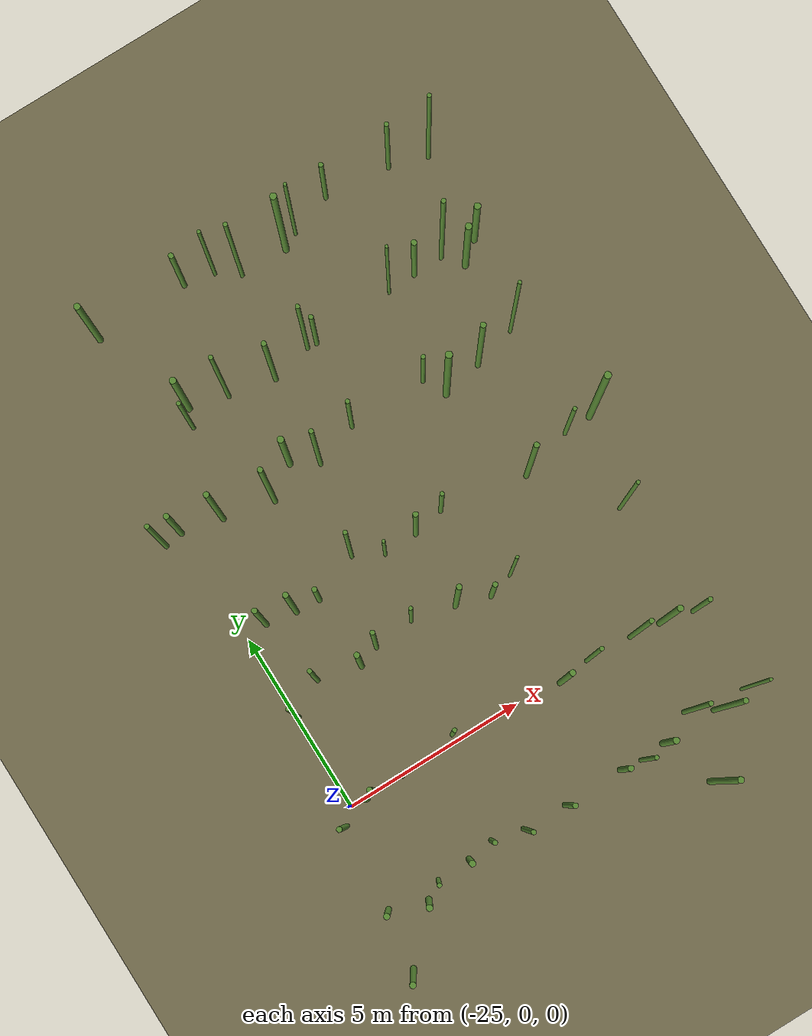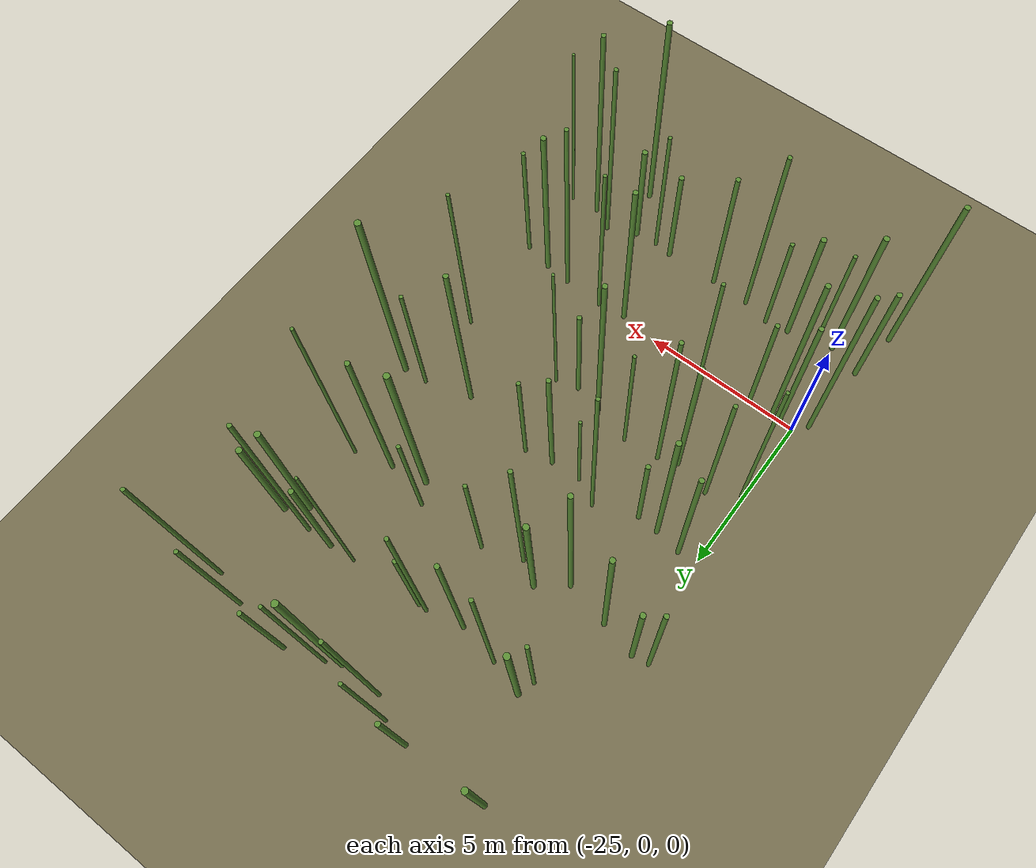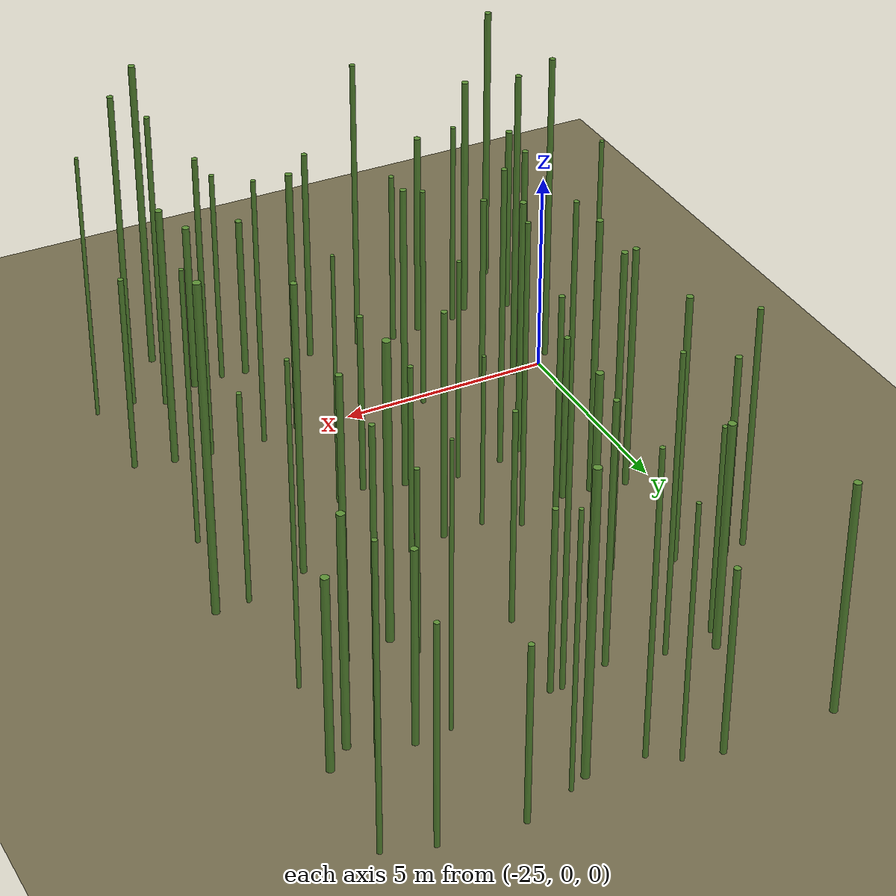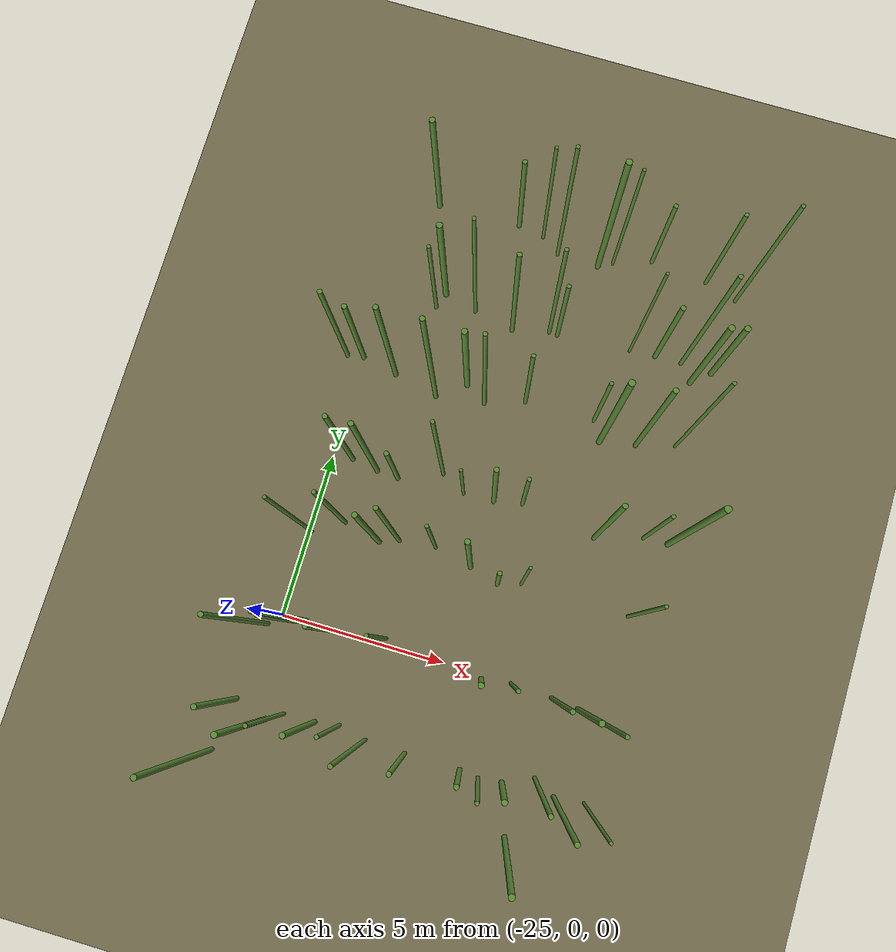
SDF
<sdf version="1.9">
 <world name="bamboo_field">
  <model name="ground_plane">
   <static>true</static>
   <link name="link">
    <collision name="collision">
     <geometry><plane><normal>0 0 1</normal><size>80.0 80.0</size></plane></geometry>
    </collision>
    <visual name="visual">
     <geometry><plane><normal>0 0 1</normal><size>80.0 80.0</size></plane></geometry>
     <material><diffuse>0.45 0.42 0.30 1</diffuse></material>
    </visual>
   </link>
  </model>
  <model name="bamboo_890">
   <static>true</static>
   <pose>-25.815961048174238 -4.336110451704584 3.5753836882809575 0 0 0</pose>
   <link name="link">
    <collision name="collision">
     <geometry>
      <cylinder><radius>0.07972393766311794</radius><length>7.150767376561915</length></cylinder>
     </geometry>
    </collision>
    <visual name="visual">
     <geometry>
      <cylinder><radius>0.07972393766311794</radius><length>7.150767376561915</length></cylinder>
     </geometry>
     <material><diffuse>0.35 0.55 0.20 1</diffuse><specular>0.1 0.1 0.1 1</specular></material>
    </visual>
   </link>
  </model>
  <model name="bamboo_896">
   <static>true</static>
   <pose>-16.85242221844045 -4.294090404373691 3.8907306446615317 0 0 0</pose>
   <link name="link">
    <collision name="collision">
     <geometry>
      <cylinder><radius>0.07999519335974248</radius><length>7.7814612893230635</length></cylinder>
     </geometry>
    </collision>
    <visual name="visual">
     <geometry>
      <cylinder><radius>0.07999519335974248</radius><length>7.7814612893230635</length></cylinder>
     </geometry>
     <material><diffuse>0.35 0.55 0.20 1</diffuse><specular>0.1 0.1 0.1 1</specular></material>
    </visual>
   </link>
  </model>
  <model name="bamboo_956">
   <static>true</static>
   <pose>-25.56715957275209 -2.7283411598563765 2.4038635089034277 0 0 0</pose>
   <link name="link">
    <collision name="collision">
     <geometry>
      <cylinder><radius>0.07963657076136091</radius><length>4.807727017806855</length></cylinder>
     </geometry>
    </collision>
    <visual name="visual">
     <geometry>
      <cylinder><radius>0.07963657076136091</radius><length>4.807727017806855</length></cylinder>
     </geometry>
     <material><diffuse>0.35 0.55 0.20 1</diffuse><specular>0.1 0.1 0.1 1</specular></material>
    </visual>
   </link>
  </model>
  <model name="bamboo_957">
   <static>true</static>
   <pose>-24.559152380116394 -3.049397445802881 3.0932400676260947 0 0 0</pose>
   <link name="link">
    <collision name="collision">
     <geometry>
      <cylinder><radius>0.08298361559976972</radius><length>6.186480135252189</length></cylinder>
     </geometry>
    </collision>
    <visual name="visual">
     <geometry>
      <cylinder><radius>0.08298361559976972</radius><length>6.186480135252189</length></cylinder>
     </geometry>
     <material><diffuse>0.35 0.55 0.20 1</diffuse><specular>0.1 0.1 0.1 1</specular></material>
    </visual>
   </link>
  </model>
  <model name="bamboo_958">
   <static>true</static>
   <pose>-24.090360570236673 -2.7497570448590603 2.6291183956395727 0 0 0</pose>
   <link name="link">
    <collision name="collision">
     <geometry>
      <cylinder><radius>0.059181493837429405</radius><length>5.2582367912791455</length></cylinder>
     </geometry>
    </collision>
    <visual name="visual">
     <geometry>
      <cylinder><radius>0.059181493837429405</radius><length>5.2582367912791455</length></cylinder>
     </geometry>
     <material><diffuse>0.35 0.55 0.20 1</diffuse><specular>0.1 0.1 0.1 1</specular></material>
    </visual>
   </link>
  </model>
  <model name="bamboo_959">
   <static>true</static>
   <pose>-23.146410803214398 -2.727480685984248 2.6060891432270443 0 0 0</pose>
   <link name="link">
    <collision name="collision">
     <geometry>
      <cylinder><radius>0.08301803513593319</radius><length>5.212178286454089</length></cylinder>
     </geometry>
    </collision>
    <visual name="visual">
     <geometry>
      <cylinder><radius>0.08301803513593319</radius><length>5.212178286454089</length></cylinder>
     </geometry>
     <material><diffuse>0.35 0.55 0.20 1</diffuse><specular>0.1 0.1 0.1 1</specular></material>
    </visual>
   </link>
  </model>
  <model name="bamboo_960">
   <static>true</static>
   <pose>-22.414339742873768 -2.609461399544144 2.2187639857658032 0 0 0</pose>
   <link name="link">
    <collision name="collision">
     <geometry>
      <cylinder><radius>0.06437274633497414</radius><length>4.4375279715316065</length></cylinder>
     </geometry>
    </collision>
    <visual name="visual">
     <geometry>
      <cylinder><radius>0.06437274633497414</radius><length>4.4375279715316065</length></cylinder>
     </geometry>
     <material><diffuse>0.35 0.55 0.20 1</diffuse><specular>0.1 0.1 0.1 1</specular></material>
    </visual>
   </link>
  </model>
  <model name="bamboo_961">
   <static>true</static>
   <pose>-21.558027747997908 -2.797547038300263 3.7087029390977464 0 0 0</pose>
   <link name="link">
    <collision name="collision">
     <geometry>
      <cylinder><radius>0.06379555276120283</radius><length>7.417405878195493</length></cylinder>
     </geometry>
    </collision>
    <visual name="visual">
     <geometry>
      <cylinder><radius>0.06379555276120283</radius><length>7.417405878195493</length></cylinder>
     </geometry>
     <material><diffuse>0.35 0.55 0.20 1</diffuse><specular>0.1 0.1 0.1 1</specular></material>
    </visual>
   </link>
  </model>
  <model name="bamboo_962">
   <static>true</static>
   <pose>-20.330382768815213 -2.8471784636018214 2.7055275405417496 0 0 0</pose>
   <link name="link">
    <collision name="collision">
     <geometry>
      <cylinder><radius>0.07084698381889155</radius><length>5.411055081083499</length></cylinder>
     </geometry>
    </collision>
    <visual name="visual">
     <geometry>
      <cylinder><radius>0.07084698381889155</radius><length>5.411055081083499</length></cylinder>
     </geometry>
     <material><diffuse>0.35 0.55 0.20 1</diffuse><specular>0.1 0.1 0.1 1</specular></material>
    </visual>
   </link>
  </model>
  <model name="bamboo_963">
   <static>true</static>
   <pose>-18.644858351196923 -2.832636844901462 2.0537996853171885 0 0 0</pose>
   <link name="link">
    <collision name="collision">
     <geometry>
      <cylinder><radius>0.07710285670458039</radius><length>4.107599370634377</length></cylinder>
     </geometry>
    </collision>
    <visual name="visual">
     <geometry>
      <cylinder><radius>0.07710285670458039</radius><length>4.107599370634377</length></cylinder>
     </geometry>
     <material><diffuse>0.35 0.55 0.20 1</diffuse><specular>0.1 0.1 0.1 1</specular></material>
    </visual>
   </link>
  </model>
  <model name="bamboo_964">
   <static>true</static>
   <pose>-18.06699035074461 -2.8981866603637374 2.7025385209388917 0 0 0</pose>
   <link name="link">
    <collision name="collision">
     <geometry>
      <cylinder><radius>0.05786830403355121</radius><length>5.405077041877783</length></cylinder>
     </geometry>
    </collision>
    <visual name="visual">
     <geometry>
      <cylinder><radius>0.05786830403355121</radius><length>5.405077041877783</length></cylinder>
     </geometry>
     <material><diffuse>0.35 0.55 0.20 1</diffuse><specular>0.1 0.1 0.1 1</specular></material>
    </visual>
   </link>
  </model>
  <model name="bamboo_965">
   <static>true</static>
   <pose>-17.357186505502874 -2.835200432086874 2.1310004721423974 0 0 0</pose>
   <link name="link">
    <collision name="collision">
     <geometry>
      <cylinder><radius>0.08551945093571814</radius><length>4.262000944284795</length></cylinder>
     </geometry>
    </collision>
    <visual name="visual">
     <geometry>
      <cylinder><radius>0.08551945093571814</radius><length>4.262000944284795</length></cylinder>
     </geometry>
     <material><diffuse>0.35 0.55 0.20 1</diffuse><specular>0.1 0.1 0.1 1</specular></material>
    </visual>
   </link>
  </model>
  <model name="bamboo_966">
   <static>true</static>
   <pose>-16.465105845371536 -2.440529520387524 3.726737043596402 0 0 0</pose>
   <link name="link">
    <collision name="collision">
     <geometry>
      <cylinder><radius>0.06304546932047894</radius><length>7.453474087192804</length></cylinder>
     </geometry>
    </collision>
    <visual name="visual">
     <geometry>
      <cylinder><radius>0.06304546932047894</radius><length>7.453474087192804</length></cylinder>
     </geometry>
     <material><diffuse>0.35 0.55 0.20 1</diffuse><specular>0.1 0.1 0.1 1</specular></material>
    </visual>
   </link>
  </model>
  <model name="bamboo_967">
   <static>true</static>
   <pose>-15.791676559285897 -2.7983058587645666 3.971529563017403 0 0 0</pose>
   <link name="link">
    <collision name="collision">
     <geometry>
      <cylinder><radius>0.06939946167999372</radius><length>7.943059126034806</length></cylinder>
     </geometry>
    </collision>
    <visual name="visual">
     <geometry>
      <cylinder><radius>0.06939946167999372</radius><length>7.943059126034806</length></cylinder>
     </geometry>
     <material><diffuse>0.35 0.55 0.20 1</diffuse><specular>0.1 0.1 0.1 1</specular></material>
    </visual>
   </link>
  </model>
  <model name="bamboo_968">
   <static>true</static>
   <pose>-14.891900193025585 -2.7195784462254045 3.350222590653722 0 0 0</pose>
   <link name="link">
    <collision name="collision">
     <geometry>
      <cylinder><radius>0.045002834160202725</radius><length>6.700445181307444</length></cylinder>
     </geometry>
    </collision>
    <visual name="visual">
     <geometry>
      <cylinder><radius>0.045002834160202725</radius><length>6.700445181307444</length></cylinder>
     </geometry>
     <material><diffuse>0.35 0.55 0.20 1</diffuse><specular>0.1 0.1 0.1 1</specular></material>
    </visual>
   </link>
  </model>
  <model name="bamboo_1023">
   <static>true</static>
   <pose>-25.360858038581476 -0.3646695667182474 3.902439700157492 0 0 0</pose>
   <link name="link">
    <collision name="collision">
     <geometry>
      <cylinder><radius>0.06951692489130364</radius><length>7.804879400314984</length></cylinder>
     </geometry>
    </collision>
    <visual name="visual">
     <geometry>
      <cylinder><radius>0.06951692489130364</radius><length>7.804879400314984</length></cylinder>
     </geometry>
     <material><diffuse>0.35 0.55 0.20 1</diffuse><specular>0.1 0.1 0.1 1</specular></material>
    </visual>
   </link>
  </model>
  <model name="bamboo_1024">
   <static>true</static>
   <pose>-24.545675718209168 -0.05636941325124595 2.9081110302859057 0 0 0</pose>
   <link name="link">
    <collision name="collision">
     <geometry>
      <cylinder><radius>0.0729769661575016</radius><length>5.816222060571811</length></cylinder>
     </geometry>
    </collision>
    <visual name="visual">
     <geometry>
      <cylinder><radius>0.0729769661575016</radius><length>5.816222060571811</length></cylinder>
     </geometry>
     <material><diffuse>0.35 0.55 0.20 1</diffuse><specular>0.1 0.1 0.1 1</specular></material>
    </visual>
   </link>
  </model>
  <model name="bamboo_1025">
   <static>true</static>
   <pose>-24.28455381778152 0.03976925733681791 3.9017919369504153 0 0 0</pose>
   <link name="link">
    <collision name="collision">
     <geometry>
      <cylinder><radius>0.07280863785086752</radius><length>7.8035838739008305</length></cylinder>
     </geometry>
    </collision>
    <visual name="visual">
     <geometry>
      <cylinder><radius>0.07280863785086752</radius><length>7.8035838739008305</length></cylinder>
     </geometry>
     <material><diffuse>0.35 0.55 0.20 1</diffuse><specular>0.1 0.1 0.1 1</specular></material>
    </visual>
   </link>
  </model>
  <model name="bamboo_1026">
   <static>true</static>
   <pose>-23.484189247755058 -0.021761574132829364 2.422733722079975 0 0 0</pose>
   <link name="link">
    <collision name="collision">
     <geometry>
      <cylinder><radius>0.06845792179156847</radius><length>4.84546744415995</length></cylinder>
     </geometry>
    </collision>
    <visual name="visual">
     <geometry>
      <cylinder><radius>0.06845792179156847</radius><length>4.84546744415995</length></cylinder>
     </geometry>
     <material><diffuse>0.35 0.55 0.20 1</diffuse><specular>0.1 0.1 0.1 1</specular></material>
    </visual>
   </link>
  </model>
  <model name="bamboo_1027">
   <static>true</static>
   <pose>-21.83610128693749 0.2032221220711954 2.797716993915497 0 0 0</pose>
   <link name="link">
    <collision name="collision">
     <geometry>
      <cylinder><radius>0.05906954649558328</radius><length>5.595433987830994</length></cylinder>
     </geometry>
    </collision>
    <visual name="visual">
     <geometry>
      <cylinder><radius>0.05906954649558328</radius><length>5.595433987830994</length></cylinder>
     </geometry>
     <material><diffuse>0.35 0.55 0.20 1</diffuse><specular>0.1 0.1 0.1 1</specular></material>
    </visual>
   </link>
  </model>
  <model name="bamboo_1028">
   <static>true</static>
   <pose>-18.77734590296362 -0.12872082647017719 3.3081285976489583 0 0 0</pose>
   <link name="link">
    <collision name="collision">
     <geometry>
      <cylinder><radius>0.07762792831451909</radius><length>6.616257195297917</length></cylinder>
     </geometry>
    </collision>
    <visual name="visual">
     <geometry>
      <cylinder><radius>0.07762792831451909</radius><length>6.616257195297917</length></cylinder>
     </geometry>
     <material><diffuse>0.35 0.55 0.20 1</diffuse><specular>0.1 0.1 0.1 1</specular></material>
    </visual>
   </link>
  </model>
  <model name="bamboo_1029">
   <static>true</static>
   <pose>-17.89692325613783 -0.006448187445116715 3.3699238837288856 0 0 0</pose>
   <link name="link">
    <collision name="collision">
     <geometry>
      <cylinder><radius>0.055505065360566326</radius><length>6.739847767457771</length></cylinder>
     </geometry>
    </collision>
    <visual name="visual">
     <geometry>
      <cylinder><radius>0.055505065360566326</radius><length>6.739847767457771</length></cylinder>
     </geometry>
     <material><diffuse>0.35 0.55 0.20 1</diffuse><specular>0.1 0.1 0.1 1</specular></material>
    </visual>
   </link>
  </model>
  <model name="bamboo_1030">
   <static>true</static>
   <pose>-16.622494993698552 -0.07817244094342901 3.770826077283763 0 0 0</pose>
   <link name="link">
    <collision name="collision">
     <geometry>
      <cylinder><radius>0.06448115179145425</radius><length>7.541652154567526</length></cylinder>
     </geometry>
    </collision>
    <visual name="visual">
     <geometry>
      <cylinder><radius>0.06448115179145425</radius><length>7.541652154567526</length></cylinder>
     </geometry>
     <material><diffuse>0.35 0.55 0.20 1</diffuse><specular>0.1 0.1 0.1 1</specular></material>
    </visual>
   </link>
  </model>
  <model name="bamboo_1031">
   <static>true</static>
   <pose>-15.782900396406355 -0.17410042562199024 3.2277355668895815 0 0 0</pose>
   <link name="link">
    <collision name="collision">
     <geometry>
      <cylinder><radius>0.08054971798071117</radius><length>6.455471133779163</length></cylinder>
     </geometry>
    </collision>
    <visual name="visual">
     <geometry>
      <cylinder><radius>0.08054971798071117</radius><length>6.455471133779163</length></cylinder>
     </geometry>
     <material><diffuse>0.35 0.55 0.20 1</diffuse><specular>0.1 0.1 0.1 1</specular></material>
    </visual>
   </link>
  </model>
  <model name="bamboo_1032">
   <static>true</static>
   <pose>-14.8902337312144 -0.3637636041969985 2.448460424655834 0 0 0</pose>
   <link name="link">
    <collision name="collision">
     <geometry>
      <cylinder><radius>0.06317624378071726</radius><length>4.896920849311668</length></cylinder>
     </geometry>
    </collision>
    <visual name="visual">
     <geometry>
      <cylinder><radius>0.06317624378071726</radius><length>4.896920849311668</length></cylinder>
     </geometry>
     <material><diffuse>0.35 0.55 0.20 1</diffuse><specular>0.1 0.1 0.1 1</specular></material>
    </visual>
   </link>
  </model>
  <model name="bamboo_1087">
   <static>true</static>
   <pose>-24.929234527138036 2.6518426527826735 3.6382501384565282 0 0 0</pose>
   <link name="link">
    <collision name="collision">
     <geometry>
      <cylinder><radius>0.050779072785033706</radius><length>7.2765002769130565</length></cylinder>
     </geometry>
    </collision>
    <visual name="visual">
     <geometry>
      <cylinder><radius>0.050779072785033706</radius><length>7.2765002769130565</length></cylinder>
     </geometry>
     <material><diffuse>0.35 0.55 0.20 1</diffuse><specular>0.1 0.1 0.1 1</specular></material>
    </visual>
   </link>
  </model>
  <model name="bamboo_1088">
   <static>true</static>
   <pose>-24.035895725856673 3.1964142205058295 3.1461181835785785 0 0 0</pose>
   <link name="link">
    <collision name="collision">
     <geometry>
      <cylinder><radius>0.060878757715663465</radius><length>6.292236367157157</length></cylinder>
     </geometry>
    </collision>
    <visual name="visual">
     <geometry>
      <cylinder><radius>0.060878757715663465</radius><length>6.292236367157157</length></cylinder>
     </geometry>
     <material><diffuse>0.35 0.55 0.20 1</diffuse><specular>0.1 0.1 0.1 1</specular></material>
    </visual>
   </link>
  </model>
  <model name="bamboo_1089">
   <static>true</static>
   <pose>-22.886024907515704 2.9195478218214914 3.211419420433187 0 0 0</pose>
   <link name="link">
    <collision name="collision">
     <geometry>
      <cylinder><radius>0.07600167476895581</radius><length>6.422838840866374</length></cylinder>
     </geometry>
    </collision>
    <visual name="visual">
     <geometry>
      <cylinder><radius>0.07600167476895581</radius><length>6.422838840866374</length></cylinder>
     </geometry>
     <material><diffuse>0.35 0.55 0.20 1</diffuse><specular>0.1 0.1 0.1 1</specular></material>
    </visual>
   </link>
  </model>
  <model name="bamboo_1090">
   <static>true</static>
   <pose>-22.30736490315155 3.12608125376736 3.73269110512531 0 0 0</pose>
   <link name="link">
    <collision name="collision">
     <geometry>
      <cylinder><radius>0.06245373694188244</radius><length>7.46538221025062</length></cylinder>
     </geometry>
    </collision>
    <visual name="visual">
     <geometry>
      <cylinder><radius>0.06245373694188244</radius><length>7.46538221025062</length></cylinder>
     </geometry>
     <material><diffuse>0.35 0.55 0.20 1</diffuse><specular>0.1 0.1 0.1 1</specular></material>
    </visual>
   </link>
  </model>
  <model name="bamboo_1091">
   <static>true</static>
   <pose>-21.19051926321501 3.2368687633873363 2.790794258400766 0 0 0</pose>
   <link name="link">
    <collision name="collision">
     <geometry>
      <cylinder><radius>0.05164111416796014</radius><length>5.581588516801532</length></cylinder>
     </geometry>
    </collision>
    <visual name="visual">
     <geometry>
      <cylinder><radius>0.05164111416796014</radius><length>5.581588516801532</length></cylinder>
     </geometry>
     <material><diffuse>0.35 0.55 0.20 1</diffuse><specular>0.1 0.1 0.1 1</specular></material>
    </visual>
   </link>
  </model>
  <model name="bamboo_1092">
   <static>true</static>
   <pose>-20.018152074414676 2.96660947447854 3.7319071466567335 0 0 0</pose>
   <link name="link">
    <collision name="collision">
     <geometry>
      <cylinder><radius>0.07229582648297023</radius><length>7.463814293313467</length></cylinder>
     </geometry>
    </collision>
    <visual name="visual">
     <geometry>
      <cylinder><radius>0.07229582648297023</radius><length>7.463814293313467</length></cylinder>
     </geometry>
     <material><diffuse>0.35 0.55 0.20 1</diffuse><specular>0.1 0.1 0.1 1</specular></material>
    </visual>
   </link>
  </model>
  <model name="bamboo_1093">
   <static>true</static>
   <pose>-19.10318762388485 2.7009118322679777 2.247563222705039 0 0 0</pose>
   <link name="link">
    <collision name="collision">
     <geometry>
      <cylinder><radius>0.06805221775366353</radius><length>4.495126445410078</length></cylinder>
     </geometry>
    </collision>
    <visual name="visual">
     <geometry>
      <cylinder><radius>0.06805221775366353</radius><length>4.495126445410078</length></cylinder>
     </geometry>
     <material><diffuse>0.35 0.55 0.20 1</diffuse><specular>0.1 0.1 0.1 1</specular></material>
    </visual>
   </link>
  </model>
  <model name="bamboo_1094">
   <static>true</static>
   <pose>-18.414675867207535 2.899298103440958 3.140488766457942 0 0 0</pose>
   <link name="link">
    <collision name="collision">
     <geometry>
      <cylinder><radius>0.042643719299619194</radius><length>6.280977532915884</length></cylinder>
     </geometry>
    </collision>
    <visual name="visual">
     <geometry>
      <cylinder><radius>0.042643719299619194</radius><length>6.280977532915884</length></cylinder>
     </geometry>
     <material><diffuse>0.35 0.55 0.20 1</diffuse><specular>0.1 0.1 0.1 1</specular></material>
    </visual>
   </link>
  </model>
  <model name="bamboo_1095">
   <static>true</static>
   <pose>-15.08508602859478 2.877173747464722 3.4112354045945024 0 0 0</pose>
   <link name="link">
    <collision name="collision">
     <geometry>
      <cylinder><radius>0.05226433471951281</radius><length>6.822470809189005</length></cylinder>
     </geometry>
    </collision>
    <visual name="visual">
     <geometry>
      <cylinder><radius>0.05226433471951281</radius><length>6.822470809189005</length></cylinder>
     </geometry>
     <material><diffuse>0.35 0.55 0.20 1</diffuse><specular>0.1 0.1 0.1 1</specular></material>
    </visual>
   </link>
  </model>
  <model name="bamboo_1155">
   <static>true</static>
   <pose>-24.4029375286513 5.12446588388178 3.0183170344571186 0 0 0</pose>
   <link name="link">
    <collision name="collision">
     <geometry>
      <cylinder><radius>0.07225357821253547</radius><length>6.036634068914237</length></cylinder>
     </geometry>
    </collision>
    <visual name="visual">
     <geometry>
      <cylinder><radius>0.07225357821253547</radius><length>6.036634068914237</length></cylinder>
     </geometry>
     <material><diffuse>0.35 0.55 0.20 1</diffuse><specular>0.1 0.1 0.1 1</specular></material>
    </visual>
   </link>
  </model>
  <model name="bamboo_1156">
   <static>true</static>
   <pose>-23.576865301043625 4.987313610536278 3.4312997453771814 0 0 0</pose>
   <link name="link">
    <collision name="collision">
     <geometry>
      <cylinder><radius>0.07472548368696014</radius><length>6.862599490754363</length></cylinder>
     </geometry>
    </collision>
    <visual name="visual">
     <geometry>
      <cylinder><radius>0.07472548368696014</radius><length>6.862599490754363</length></cylinder>
     </geometry>
     <material><diffuse>0.35 0.55 0.20 1</diffuse><specular>0.1 0.1 0.1 1</specular></material>
    </visual>
   </link>
  </model>
  <model name="bamboo_1157">
   <static>true</static>
   <pose>-22.909172892705207 4.94157913729013 2.073208975899213 0 0 0</pose>
   <link name="link">
    <collision name="collision">
     <geometry>
      <cylinder><radius>0.06919913107519494</radius><length>4.146417951798426</length></cylinder>
     </geometry>
    </collision>
    <visual name="visual">
     <geometry>
      <cylinder><radius>0.06919913107519494</radius><length>4.146417951798426</length></cylinder>
     </geometry>
     <material><diffuse>0.35 0.55 0.20 1</diffuse><specular>0.1 0.1 0.1 1</specular></material>
    </visual>
   </link>
  </model>
  <model name="bamboo_1158">
   <static>true</static>
   <pose>-21.617614714359487 5.454328024480697 3.7774178590935907 0 0 0</pose>
   <link name="link">
    <collision name="collision">
     <geometry>
      <cylinder><radius>0.0552999518159862</radius><length>7.5548357181871815</length></cylinder>
     </geometry>
    </collision>
    <visual name="visual">
     <geometry>
      <cylinder><radius>0.0552999518159862</radius><length>7.5548357181871815</length></cylinder>
     </geometry>
     <material><diffuse>0.35 0.55 0.20 1</diffuse><specular>0.1 0.1 0.1 1</specular></material>
    </visual>
   </link>
  </model>
  <model name="bamboo_1159">
   <static>true</static>
   <pose>-20.85677732218623 5.045581255733592 2.1680562987185716 0 0 0</pose>
   <link name="link">
    <collision name="collision">
     <geometry>
      <cylinder><radius>0.04671651577637447</radius><length>4.336112597437143</length></cylinder>
     </geometry>
    </collision>
    <visual name="visual">
     <geometry>
      <cylinder><radius>0.04671651577637447</radius><length>4.336112597437143</length></cylinder>
     </geometry>
     <material><diffuse>0.35 0.55 0.20 1</diffuse><specular>0.1 0.1 0.1 1</specular></material>
    </visual>
   </link>
  </model>
  <model name="bamboo_1160">
   <static>true</static>
   <pose>-19.90706046096774 5.08574573233786 2.8522046871654867 0 0 0</pose>
   <link name="link">
    <collision name="collision">
     <geometry>
      <cylinder><radius>0.07105629099025353</radius><length>5.704409374330973</length></cylinder>
     </geometry>
    </collision>
    <visual name="visual">
     <geometry>
      <cylinder><radius>0.07105629099025353</radius><length>5.704409374330973</length></cylinder>
     </geometry>
     <material><diffuse>0.35 0.55 0.20 1</diffuse><specular>0.1 0.1 0.1 1</specular></material>
    </visual>
   </link>
  </model>
  <model name="bamboo_1161">
   <static>true</static>
   <pose>-19.048891087230462 5.251227186441029 2.359131462003119 0 0 0</pose>
   <link name="link">
    <collision name="collision">
     <geometry>
      <cylinder><radius>0.05911854633119635</radius><length>4.718262924006238</length></cylinder>
     </geometry>
    </collision>
    <visual name="visual">
     <geometry>
      <cylinder><radius>0.05911854633119635</radius><length>4.718262924006238</length></cylinder>
     </geometry>
     <material><diffuse>0.35 0.55 0.20 1</diffuse><specular>0.1 0.1 0.1 1</specular></material>
    </visual>
   </link>
  </model>
  <model name="bamboo_1162">
   <static>true</static>
   <pose>-16.68324169377047 4.868365166379786 3.5717465918723486 0 0 0</pose>
   <link name="link">
    <collision name="collision">
     <geometry>
      <cylinder><radius>0.07218271996012293</radius><length>7.143493183744697</length></cylinder>
     </geometry>
    </collision>
    <visual name="visual">
     <geometry>
      <cylinder><radius>0.07218271996012293</radius><length>7.143493183744697</length></cylinder>
     </geometry>
     <material><diffuse>0.35 0.55 0.20 1</diffuse><specular>0.1 0.1 0.1 1</specular></material>
    </visual>
   </link>
  </model>
  <model name="bamboo_1163">
   <static>true</static>
   <pose>-15.252308381770757 5.2779563204544715 2.605431165474822 0 0 0</pose>
   <link name="link">
    <collision name="collision">
     <geometry>
      <cylinder><radius>0.056462064627566796</radius><length>5.210862330949644</length></cylinder>
     </geometry>
    </collision>
    <visual name="visual">
     <geometry>
      <cylinder><radius>0.056462064627566796</radius><length>5.210862330949644</length></cylinder>
     </geometry>
     <material><diffuse>0.35 0.55 0.20 1</diffuse><specular>0.1 0.1 0.1 1</specular></material>
    </visual>
   </link>
  </model>
  <model name="bamboo_1164">
   <static>true</static>
   <pose>-14.486749555297038 5.317353493742744 3.9968101956695197 0 0 0</pose>
   <link name="link">
    <collision name="collision">
     <geometry>
      <cylinder><radius>0.08989978527198177</radius><length>7.993620391339039</length></cylinder>
     </geometry>
    </collision>
    <visual name="visual">
     <geometry>
      <cylinder><radius>0.08989978527198177</radius><length>7.993620391339039</length></cylinder>
     </geometry>
     <material><diffuse>0.35 0.55 0.20 1</diffuse><specular>0.1 0.1 0.1 1</specular></material>
    </visual>
   </link>
  </model>
  <model name="bamboo_1223">
   <static>true</static>
   <pose>-25.53479763833899 8.20137957479833 2.9772436862435896 0 0 0</pose>
   <link name="link">
    <collision name="collision">
     <geometry>
      <cylinder><radius>0.06548041817140894</radius><length>5.954487372487179</length></cylinder>
     </geometry>
    </collision>
    <visual name="visual">
     <geometry>
      <cylinder><radius>0.06548041817140894</radius><length>5.954487372487179</length></cylinder>
     </geometry>
     <material><diffuse>0.35 0.55 0.20 1</diffuse><specular>0.1 0.1 0.1 1</specular></material>
    </visual>
   </link>
  </model>
  <model name="bamboo_1224">
   <static>true</static>
   <pose>-25.03222238060974 8.283049273547787 2.484705738391363 0 0 0</pose>
   <link name="link">
    <collision name="collision">
     <geometry>
      <cylinder><radius>0.07678321028008753</radius><length>4.969411476782726</length></cylinder>
     </geometry>
    </collision>
    <visual name="visual">
     <geometry>
      <cylinder><radius>0.07678321028008753</radius><length>4.969411476782726</length></cylinder>
     </geometry>
     <material><diffuse>0.35 0.55 0.20 1</diffuse><specular>0.1 0.1 0.1 1</specular></material>
    </visual>
   </link>
  </model>
  <model name="bamboo_1225">
   <static>true</static>
   <pose>-23.92106510665111 8.032690325495825 3.290667074142162 0 0 0</pose>
   <link name="link">
    <collision name="collision">
     <geometry>
      <cylinder><radius>0.07487357112231688</radius><length>6.581334148284324</length></cylinder>
     </geometry>
    </collision>
    <visual name="visual">
     <geometry>
      <cylinder><radius>0.07487357112231688</radius><length>6.581334148284324</length></cylinder>
     </geometry>
     <material><diffuse>0.35 0.55 0.20 1</diffuse><specular>0.1 0.1 0.1 1</specular></material>
    </visual>
   </link>
  </model>
  <model name="bamboo_1226">
   <static>true</static>
   <pose>-22.542508871902886 7.722496957602768 3.90355649087734 0 0 0</pose>
   <link name="link">
    <collision name="collision">
     <geometry>
      <cylinder><radius>0.07010746634689785</radius><length>7.80711298175468</length></cylinder>
     </geometry>
    </collision>
    <visual name="visual">
     <geometry>
      <cylinder><radius>0.07010746634689785</radius><length>7.80711298175468</length></cylinder>
     </geometry>
     <material><diffuse>0.35 0.55 0.20 1</diffuse><specular>0.1 0.1 0.1 1</specular></material>
    </visual>
   </link>
  </model>
  <model name="bamboo_1227">
   <static>true</static>
   <pose>-21.712868827587542 8.344557741365495 2.7953338430236245 0 0 0</pose>
   <link name="link">
    <collision name="collision">
     <geometry>
      <cylinder><radius>0.0858441426546677</radius><length>5.590667686047249</length></cylinder>
     </geometry>
    </collision>
    <visual name="visual">
     <geometry>
      <cylinder><radius>0.0858441426546677</radius><length>5.590667686047249</length></cylinder>
     </geometry>
     <material><diffuse>0.35 0.55 0.20 1</diffuse><specular>0.1 0.1 0.1 1</specular></material>
    </visual>
   </link>
  </model>
  <model name="bamboo_1228">
   <static>true</static>
   <pose>-21.038756445306987 7.925414482542107 3.6594991300533932 0 0 0</pose>
   <link name="link">
    <collision name="collision">
     <geometry>
      <cylinder><radius>0.06114724299528583</radius><length>7.3189982601067864</length></cylinder>
     </geometry>
    </collision>
    <visual name="visual">
     <geometry>
      <cylinder><radius>0.06114724299528583</radius><length>7.3189982601067864</length></cylinder>
     </geometry>
     <material><diffuse>0.35 0.55 0.20 1</diffuse><specular>0.1 0.1 0.1 1</specular></material>
    </visual>
   </link>
  </model>
  <model name="bamboo_1229">
   <static>true</static>
   <pose>-19.840566643169087 8.327341115487135 2.6159577330042936 0 0 0</pose>
   <link name="link">
    <collision name="collision">
     <geometry>
      <cylinder><radius>0.05913943051773301</radius><length>5.231915466008587</length></cylinder>
     </geometry>
    </collision>
    <visual name="visual">
     <geometry>
      <cylinder><radius>0.05913943051773301</radius><length>5.231915466008587</length></cylinder>
     </geometry>
     <material><diffuse>0.35 0.55 0.20 1</diffuse><specular>0.1 0.1 0.1 1</specular></material>
    </visual>
   </link>
  </model>
  <model name="bamboo_1230">
   <static>true</static>
   <pose>-17.659048955753338 8.364872592527028 2.285426963404139 0 0 0</pose>
   <link name="link">
    <collision name="collision">
     <geometry>
      <cylinder><radius>0.05721964061790258</radius><length>4.570853926808278</length></cylinder>
     </geometry>
    </collision>
    <visual name="visual">
     <geometry>
      <cylinder><radius>0.05721964061790258</radius><length>4.570853926808278</length></cylinder>
     </geometry>
     <material><diffuse>0.35 0.55 0.20 1</diffuse><specular>0.1 0.1 0.1 1</specular></material>
    </visual>
   </link>
  </model>
  <model name="bamboo_1231">
   <static>true</static>
   <pose>-17.32286691428155 7.762749832840749 3.632778756197143 0 0 0</pose>
   <link name="link">
    <collision name="collision">
     <geometry>
      <cylinder><radius>0.08935127465739796</radius><length>7.265557512394286</length></cylinder>
     </geometry>
    </collision>
    <visual name="visual">
     <geometry>
      <cylinder><radius>0.08935127465739796</radius><length>7.265557512394286</length></cylinder>
     </geometry>
     <material><diffuse>0.35 0.55 0.20 1</diffuse><specular>0.1 0.1 0.1 1</specular></material>
    </visual>
   </link>
  </model>
  <model name="bamboo_1232">
   <static>true</static>
   <pose>-16.226001256394635 7.976116758474145 3.4660844718061323 0 0 0</pose>
   <link name="link">
    <collision name="collision">
     <geometry>
      <cylinder><radius>0.0727260595889167</radius><length>6.932168943612265</length></cylinder>
     </geometry>
    </collision>
    <visual name="visual">
     <geometry>
      <cylinder><radius>0.0727260595889167</radius><length>6.932168943612265</length></cylinder>
     </geometry>
     <material><diffuse>0.35 0.55 0.20 1</diffuse><specular>0.1 0.1 0.1 1</specular></material>
    </visual>
   </link>
  </model>
  <model name="bamboo_1233">
   <static>true</static>
   <pose>-15.048363808030016 8.283920104827327 3.8969666229223945 0 0 0</pose>
   <link name="link">
    <collision name="collision">
     <geometry>
      <cylinder><radius>0.04909921657391404</radius><length>7.793933245844789</length></cylinder>
     </geometry>
    </collision>
    <visual name="visual">
     <geometry>
      <cylinder><radius>0.04909921657391404</radius><length>7.793933245844789</length></cylinder>
     </geometry>
     <material><diffuse>0.35 0.55 0.20 1</diffuse><specular>0.1 0.1 0.1 1</specular></material>
    </visual>
   </link>
  </model>
  <model name="bamboo_1290">
   <static>true</static>
   <pose>-23.34257188570526 10.456160590306556 2.5465060047258383 0 0 0</pose>
   <link name="link">
    <collision name="collision">
     <geometry>
      <cylinder><radius>0.05667586743014713</radius><length>5.093012009451677</length></cylinder>
     </geometry>
    </collision>
    <visual name="visual">
     <geometry>
      <cylinder><radius>0.05667586743014713</radius><length>5.093012009451677</length></cylinder>
     </geometry>
     <material><diffuse>0.35 0.55 0.20 1</diffuse><specular>0.1 0.1 0.1 1</specular></material>
    </visual>
   </link>
  </model>
  <model name="bamboo_1291">
   <static>true</static>
   <pose>-23.17332340141842 10.946069864399615 2.7572647027937003 0 0 0</pose>
   <link name="link">
    <collision name="collision">
     <geometry>
      <cylinder><radius>0.08843867429428755</radius><length>5.514529405587401</length></cylinder>
     </geometry>
    </collision>
    <visual name="visual">
     <geometry>
      <cylinder><radius>0.08843867429428755</radius><length>5.514529405587401</length></cylinder>
     </geometry>
     <material><diffuse>0.35 0.55 0.20 1</diffuse><specular>0.1 0.1 0.1 1</specular></material>
    </visual>
   </link>
  </model>
  <model name="bamboo_1292">
   <static>true</static>
   <pose>-22.13379974304182 10.668396845361308 3.642686498266431 0 0 0</pose>
   <link name="link">
    <collision name="collision">
     <geometry>
      <cylinder><radius>0.05532747767449433</radius><length>7.285372996532862</length></cylinder>
     </geometry>
    </collision>
    <visual name="visual">
     <geometry>
      <cylinder><radius>0.05532747767449433</radius><length>7.285372996532862</length></cylinder>
     </geometry>
     <material><diffuse>0.35 0.55 0.20 1</diffuse><specular>0.1 0.1 0.1 1</specular></material>
    </visual>
   </link>
  </model>
  <model name="bamboo_1293">
   <static>true</static>
   <pose>-20.868751378525033 10.417647953816722 3.214933888600262 0 0 0</pose>
   <link name="link">
    <collision name="collision">
     <geometry>
      <cylinder><radius>0.06757711159849686</radius><length>6.429867777200524</length></cylinder>
     </geometry>
    </collision>
    <visual name="visual">
     <geometry>
      <cylinder><radius>0.06757711159849686</radius><length>6.429867777200524</length></cylinder>
     </geometry>
     <material><diffuse>0.35 0.55 0.20 1</diffuse><specular>0.1 0.1 0.1 1</specular></material>
    </visual>
   </link>
  </model>
  <model name="bamboo_1294">
   <static>true</static>
   <pose>-19.740146227949857 10.670302258645759 3.4825942766340354 0 0 0</pose>
   <link name="link">
    <collision name="collision">
     <geometry>
      <cylinder><radius>0.057258644404293964</radius><length>6.965188553268071</length></cylinder>
     </geometry>
    </collision>
    <visual name="visual">
     <geometry>
      <cylinder><radius>0.057258644404293964</radius><length>6.965188553268071</length></cylinder>
     </geometry>
     <material><diffuse>0.35 0.55 0.20 1</diffuse><specular>0.1 0.1 0.1 1</specular></material>
    </visual>
   </link>
  </model>
  <model name="bamboo_1295">
   <static>true</static>
   <pose>-19.473251407011258 10.657620555473773 2.2551444062450683 0 0 0</pose>
   <link name="link">
    <collision name="collision">
     <geometry>
      <cylinder><radius>0.06384309343707192</radius><length>4.510288812490137</length></cylinder>
     </geometry>
    </collision>
    <visual name="visual">
     <geometry>
      <cylinder><radius>0.06384309343707192</radius><length>4.510288812490137</length></cylinder>
     </geometry>
     <material><diffuse>0.35 0.55 0.20 1</diffuse><specular>0.1 0.1 0.1 1</specular></material>
    </visual>
   </link>
  </model>
  <model name="bamboo_1296">
   <static>true</static>
   <pose>-17.184032963613866 10.793376453122509 3.4508385455488186 0 0 0</pose>
   <link name="link">
    <collision name="collision">
     <geometry>
      <cylinder><radius>0.042643231272116916</radius><length>6.901677091097637</length></cylinder>
     </geometry>
    </collision>
    <visual name="visual">
     <geometry>
      <cylinder><radius>0.042643231272116916</radius><length>6.901677091097637</length></cylinder>
     </geometry>
     <material><diffuse>0.35 0.55 0.20 1</diffuse><specular>0.1 0.1 0.1 1</specular></material>
    </visual>
   </link>
  </model>
  <model name="bamboo_1297">
   <static>true</static>
   <pose>-16.376165812413234 10.857052991320177 2.3662090515935423 0 0 0</pose>
   <link name="link">
    <collision name="collision">
     <geometry>
      <cylinder><radius>0.0753393381304244</radius><length>4.732418103187085</length></cylinder>
     </geometry>
    </collision>
    <visual name="visual">
     <geometry>
      <cylinder><radius>0.0753393381304244</radius><length>4.732418103187085</length></cylinder>
     </geometry>
     <material><diffuse>0.35 0.55 0.20 1</diffuse><specular>0.1 0.1 0.1 1</specular></material>
    </visual>
   </link>
  </model>
  <model name="bamboo_1298">
   <static>true</static>
   <pose>-15.548675110040477 10.86794103758534 3.8833540189037743 0 0 0</pose>
   <link name="link">
    <collision name="collision">
     <geometry>
      <cylinder><radius>0.06138825413606862</radius><length>7.766708037807549</length></cylinder>
     </geometry>
    </collision>
    <visual name="visual">
     <geometry>
      <cylinder><radius>0.06138825413606862</radius><length>7.766708037807549</length></cylinder>
     </geometry>
     <material><diffuse>0.35 0.55 0.20 1</diffuse><specular>0.1 0.1 0.1 1</specular></material>
    </visual>
   </link>
  </model>
  <model name="bamboo_1299">
   <static>true</static>
   <pose>-15.124655695859532 10.361223177513523 2.8130295689490197 0 0 0</pose>
   <link name="link">
    <collision name="collision">
     <geometry>
      <cylinder><radius>0.08737273242535498</radius><length>5.626059137898039</length></cylinder>
     </geometry>
    </collision>
    <visual name="visual">
     <geometry>
      <cylinder><radius>0.08737273242535498</radius><length>5.626059137898039</length></cylinder>
     </geometry>
     <material><diffuse>0.35 0.55 0.20 1</diffuse><specular>0.1 0.1 0.1 1</specular></material>
    </visual>
   </link>
  </model>
  <model name="bamboo_1300">
   <static>true</static>
   <pose>-14.571593522148657 10.818511382062939 2.3302262511151537 0 0 0</pose>
   <link name="link">
    <collision name="collision">
     <geometry>
      <cylinder><radius>0.0872433474263674</radius><length>4.660452502230307</length></cylinder>
     </geometry>
    </collision>
    <visual name="visual">
     <geometry>
      <cylinder><radius>0.0872433474263674</radius><length>4.660452502230307</length></cylinder>
     </geometry>
     <material><diffuse>0.35 0.55 0.20 1</diffuse><specular>0.1 0.1 0.1 1</specular></material>
    </visual>
   </link>
  </model>
  <model name="bamboo_1358">
   <static>true</static>
   <pose>-24.19778002821619 13.694865493147564 2.769487614732478 0 0 0</pose>
   <link name="link">
    <collision name="collision">
     <geometry>
      <cylinder><radius>0.08394950519666726</radius><length>5.538975229464956</length></cylinder>
     </geometry>
    </collision>
    <visual name="visual">
     <geometry>
      <cylinder><radius>0.08394950519666726</radius><length>5.538975229464956</length></cylinder>
     </geometry>
     <material><diffuse>0.35 0.55 0.20 1</diffuse><specular>0.1 0.1 0.1 1</specular></material>
    </visual>
   </link>
  </model>
  <model name="bamboo_1359">
   <static>true</static>
   <pose>-21.599055684989647 13.762827606380718 2.2367019409014803 0 0 0</pose>
   <link name="link">
    <collision name="collision">
     <geometry>
      <cylinder><radius>0.07078483839844345</radius><length>4.473403881802961</length></cylinder>
     </geometry>
    </collision>
    <visual name="visual">
     <geometry>
      <cylinder><radius>0.07078483839844345</radius><length>4.473403881802961</length></cylinder>
     </geometry>
     <material><diffuse>0.35 0.55 0.20 1</diffuse><specular>0.1 0.1 0.1 1</specular></material>
    </visual>
   </link>
  </model>
  <model name="bamboo_1360">
   <static>true</static>
   <pose>-20.767416774390576 13.594519402253676 3.060961281282366 0 0 0</pose>
   <link name="link">
    <collision name="collision">
     <geometry>
      <cylinder><radius>0.04890338883870408</radius><length>6.121922562564732</length></cylinder>
     </geometry>
    </collision>
    <visual name="visual">
     <geometry>
      <cylinder><radius>0.04890338883870408</radius><length>6.121922562564732</length></cylinder>
     </geometry>
     <material><diffuse>0.35 0.55 0.20 1</diffuse><specular>0.1 0.1 0.1 1</specular></material>
    </visual>
   </link>
  </model>
  <model name="bamboo_1361">
   <static>true</static>
   <pose>-20.18318682122766 13.191661878038202 3.635125089988195 0 0 0</pose>
   <link name="link">
    <collision name="collision">
     <geometry>
      <cylinder><radius>0.05507818833915824</radius><length>7.27025017997639</length></cylinder>
     </geometry>
    </collision>
    <visual name="visual">
     <geometry>
      <cylinder><radius>0.05507818833915824</radius><length>7.27025017997639</length></cylinder>
     </geometry>
     <material><diffuse>0.35 0.55 0.20 1</diffuse><specular>0.1 0.1 0.1 1</specular></material>
    </visual>
   </link>
  </model>
  <model name="bamboo_1362">
   <static>true</static>
   <pose>-18.862648379793182 13.172374728895237 3.62143882970489 0 0 0</pose>
   <link name="link">
    <collision name="collision">
     <geometry><cylinder><radius>0.0866440917050097</radius><length>7.24287765940978</length></cylinder></geometry>
    </collision>
    <visual name="visual">
     <geometry><cylinder><radius>0.0866440917050097</radius><length>7.24287765940978</length></cylinder></geometry>
     <material><diffuse>0.35 0.55 0.20 1</diffuse><specular>0.1 0.1 0.1 1</specular></material>
    </visual>
   </link>
  </model>
  <model name="bamboo_1363">
   <static>true</static>
   <pose>-18.43551234908155 13.392335786204205 3.311708243885474 0 0 0</pose>
   <link name="link">
    <collision name="collision">
     <geometry>
      <cylinder><radius>0.04743214740521611</radius><length>6.623416487770948</length></cylinder>
     </geometry>
    </collision>
    <visual name="visual">
     <geometry>
      <cylinder><radius>0.04743214740521611</radius><length>6.623416487770948</length></cylinder>
     </geometry>
     <material><diffuse>0.35 0.55 0.20 1</diffuse><specular>0.1 0.1 0.1 1</specular></material>
    </visual>
   </link>
  </model>
  <model name="bamboo_1364">
   <static>true</static>
   <pose>-17.266664150321162 13.790625804166725 2.1346272694045902 0 0 0</pose>
   <link name="link">
    <collision name="collision">
     <geometry>
      <cylinder><radius>0.06392160066017871</radius><length>4.2692545388091805</length></cylinder>
     </geometry>
    </collision>
    <visual name="visual">
     <geometry>
      <cylinder><radius>0.06392160066017871</radius><length>4.2692545388091805</length></cylinder>
     </geometry>
     <material><diffuse>0.35 0.55 0.20 1</diffuse><specular>0.1 0.1 0.1 1</specular></material>
    </visual>
   </link>
  </model>
  <model name="bamboo_1365">
   <static>true</static>
   <pose>-15.465172586952082 13.604310668302547 2.63863155982206 0 0 0</pose>
   <link name="link">
    <collision name="collision">
     <geometry>
      <cylinder><radius>0.05925086988233356</radius><length>5.27726311964412</length></cylinder>
     </geometry>
    </collision>
    <visual name="visual">
     <geometry>
      <cylinder><radius>0.05925086988233356</radius><length>5.27726311964412</length></cylinder>
     </geometry>
     <material><diffuse>0.35 0.55 0.20 1</diffuse><specular>0.1 0.1 0.1 1</specular></material>
    </visual>
   </link>
  </model>
  <model name="bamboo_1366">
   <static>true</static>
   <pose>-14.438509342071953 13.291051769204177 3.6042818567757346 0 0 0</pose>
   <link name="link">
    <collision name="collision">
     <geometry>
      <cylinder><radius>0.05667325725340145</radius><length>7.208563713551469</length></cylinder>
     </geometry>
    </collision>
    <visual name="visual">
     <geometry>
      <cylinder><radius>0.05667325725340145</radius><length>7.208563713551469</length></cylinder>
     </geometry>
     <material><diffuse>0.35 0.55 0.20 1</diffuse><specular>0.1 0.1 0.1 1</specular></material>
    </visual>
   </link>
  </model>
 </world>
</sdf>
